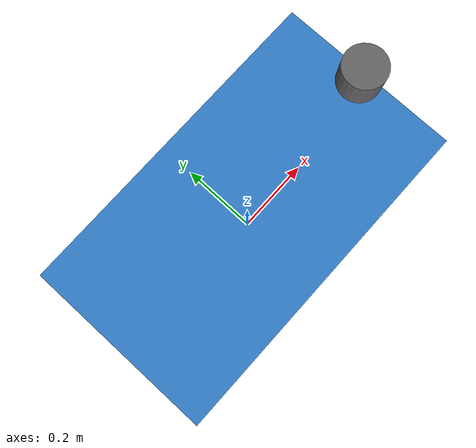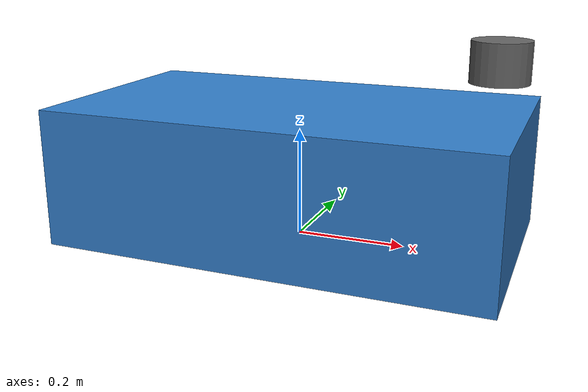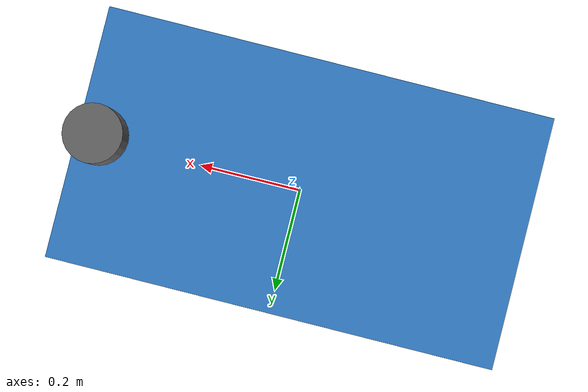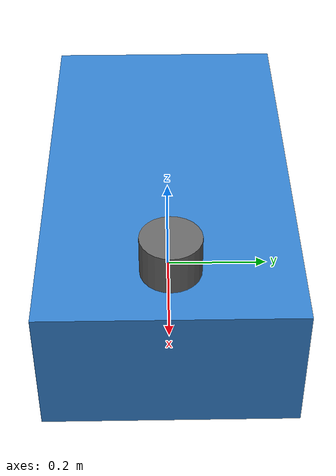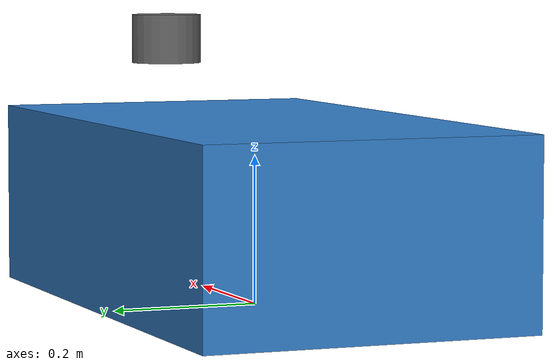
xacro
<?xml version="1.0"?>
<robot xmlns:xacro="http://www.ros.org/wiki/xacro" name="simple_car_jt128_sim">

  <material name="car_body">
    <color rgba="0.2 0.5 0.8 1.0"/>
  </material>
  <material name="sensor_grey">
    <color rgba="0.4 0.4 0.4 1.0"/>
  </material>
  <material name="black">
    <color rgba="0.1 0.1 0.1 1.0"/>
  </material>

  <!-- ======== base_footprint (projected to ground) ======== -->
  <link name="base_footprint">
    <inertial>
      <mass value="0.001"/>
      <inertia ixx="1e-9" ixy="0" ixz="0" iyy="1e-9" iyz="0" izz="1e-9"/>
    </inertial>
  </link>

  <!-- ======== base_link: car body (0.8 x 0.45 x 0.25) ======== -->
  <joint name="base_footprint_joint" type="fixed">
    <origin xyz="0 0 0.125" rpy="0 0 0"/>
    <parent link="base_footprint"/>
    <child link="base_link"/>
  </joint>

  <link name="base_link">
    <inertial>
      <origin xyz="0 0 0" rpy="0 0 0"/>
      <mass value="8.0"/>
      <inertia ixx="0.2" ixy="0" ixz="0" iyy="0.3" iyz="0" izz="0.3"/>
    </inertial>
    <visual>
      <geometry>
        <box size="0.80 0.45 0.25"/>
      </geometry>
      <material name="car_body"/>
    </visual>
    <!-- Collision intentionally small to avoid self-occluding LiDAR.
         Only a lower body strip. -->
    <collision>
      <origin xyz="0 0 -0.06" rpy="0 0 0"/>
      <geometry>
        <box size="0.70 0.38 0.08"/>
      </geometry>
    </collision>
  </link>

  <!-- ======== jt128_front_link: 3D LiDAR on top-front ======== -->
  <joint name="jt128_front_joint" type="fixed">
    <origin xyz="0.35 0.0 0.22" rpy="0 0 0"/>
    <parent link="base_link"/>
    <child link="jt128_front_link"/>
  </joint>

  <link name="jt128_front_link">
    <inertial>
      <mass value="0.01"/>
      <inertia ixx="1e-6" ixy="0" ixz="0" iyy="1e-6" iyz="0" izz="1e-6"/>
    </inertial>
    <visual>
      <geometry>
        <cylinder radius="0.05" length="0.07"/>
      </geometry>
      <material name="sensor_grey"/>
    </visual>
    <collision>
      <geometry>
        <cylinder radius="0.05" length="0.07"/>
      </geometry>
    </collision>
  </link>

  <!-- ======== Static model (no dynamics) ======== -->
  <gazebo>
    <static>true</static>
  </gazebo>

  <!-- ======== JT128-like 3D LiDAR Gazebo sensor ======== -->
  <gazebo reference="jt128_front_link">
    <sensor type="ray" name="jt128_lidar">
      <pose>0 0 0 0 0 0</pose>
      <visualize>true</visualize>
      <update_rate>10</update_rate>
      <ray>
        <scan>
          <horizontal>
            <samples>720</samples>
            <resolution>1</resolution>
            <min_angle>-3.14159</min_angle>
            <max_angle>3.14159</max_angle>
          </horizontal>
          <vertical>
            <samples>32</samples>
            <resolution>1</resolution>
            <min_angle>-0.45</min_angle>
            <max_angle>0.35</max_angle>
          </vertical>
        </scan>
        <range>
          <min>0.08</min>
          <max>15.0</max>
          <resolution>0.01</resolution>
        </range>
      </ray>
      <plugin name="gazebo_ros_jt128_controller" filename="libgazebo_ros_ray_sensor.so">
        <ros>
          <namespace>/</namespace>
          <remapping>~/out:=/jt128/front/points</remapping>
        </ros>
        <output_type>sensor_msgs/PointCloud2</output_type>
        <frame_name>jt128_front_link</frame_name>
      </plugin>
    </sensor>
  </gazebo>

</robot>
